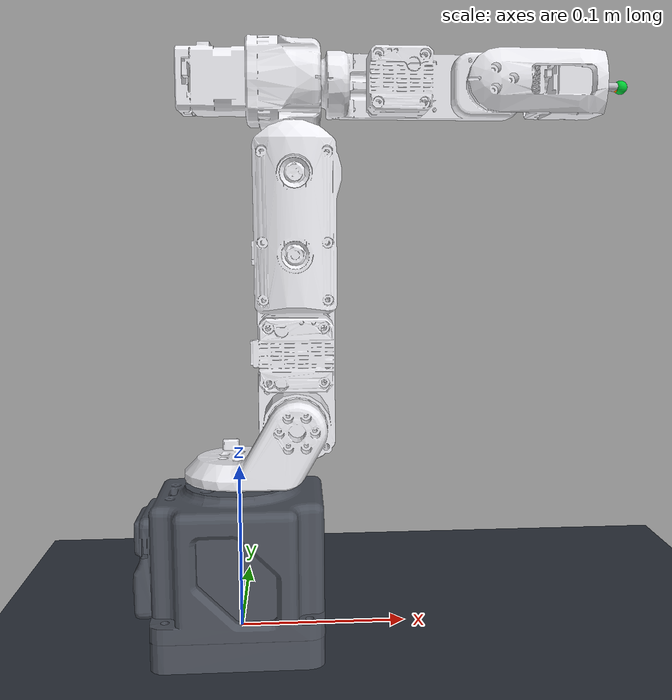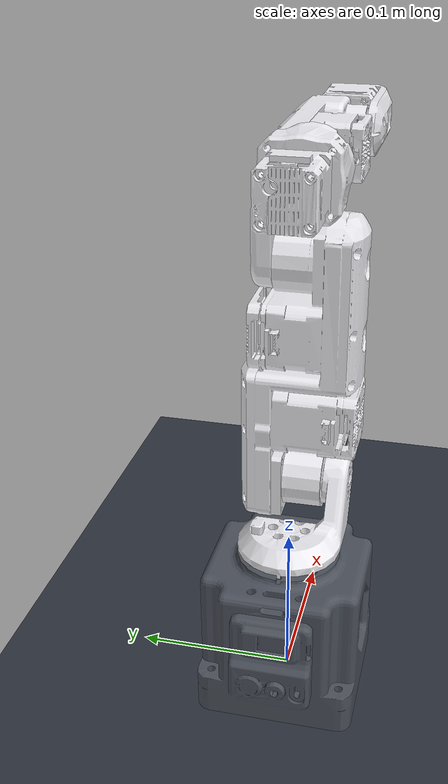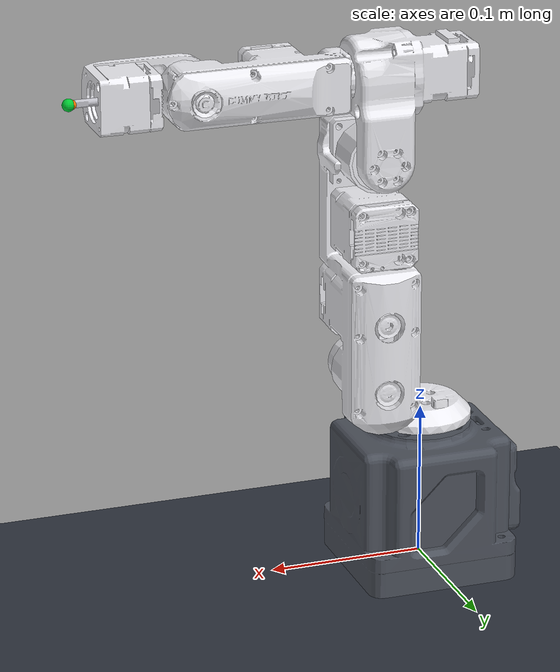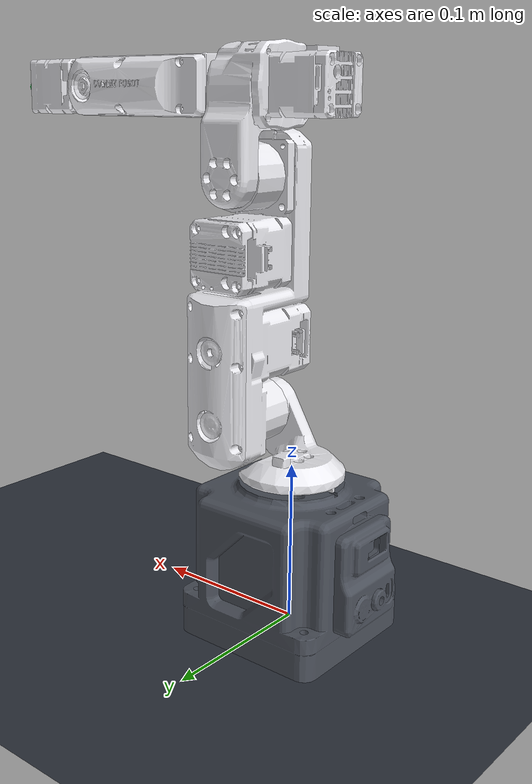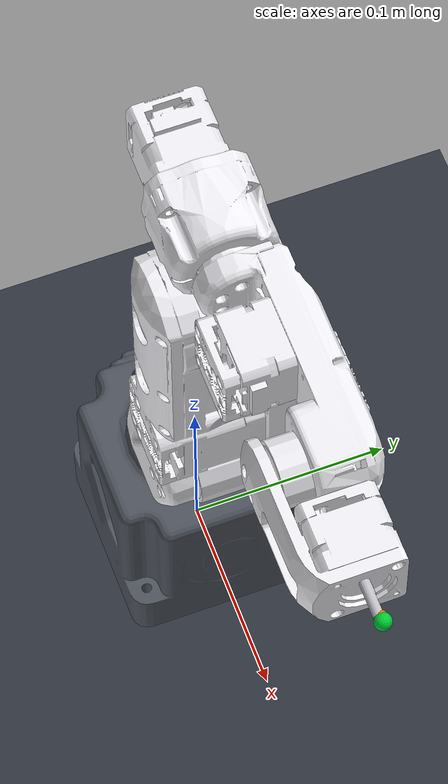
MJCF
<mujoco model="dummy_v2_FIRMWARE_DH_CAD_MASS_ESTIMATES">
  <!-- 由 tools/modeling/build_dummy_v2.py 生成，请勿手改。运动学 = V2 固件 DH；质量/惯量 = CAD 体积×估计密度 + 资料质量；执行器 = 资料额定值推算。均未经实机辨识。 -->
  <compiler angle="radian" meshdir="meshes_v2" autolimits="true" boundinertia="1e-7"/>
  <option timestep="0.002" integrator="implicitfast"/>
  <visual><global offwidth="960" offheight="720"/></visual>
  <default><geom contype="0" conaffinity="0"/></default>
  <asset>
    <mesh name="base_link" file="base_link.stl" scale="0.001 0.001 0.001" inertia="shell"/>
    <mesh name="link1" file="link1.stl" scale="0.001 0.001 0.001" inertia="shell"/>
    <mesh name="link2" file="link2.stl" scale="0.001 0.001 0.001" inertia="shell"/>
    <mesh name="link3" file="link3.stl" scale="0.001 0.001 0.001" inertia="shell"/>
    <mesh name="link4" file="link4.stl" scale="0.001 0.001 0.001" inertia="shell"/>
    <mesh name="link5" file="link5.stl" scale="0.001 0.001 0.001" inertia="shell"/>
    <mesh name="link6" file="link6.stl" scale="0.001 0.001 0.001" inertia="shell"/>
  </asset>
  <worldbody>
    <light pos="0.3 -0.6 1.2" dir="-0.2 0.5 -1" diffuse="0.8 0.8 0.8"/>
    <geom name="floor" type="plane" size="1 1 0.01" pos="0 0 -0.0075" rgba="0.18 0.20 0.24 1"/>
    <body name="base_link" gravcomp="1">
      <inertial pos="-0.000831234 0.000101811 0.0463087" mass="0.872292" fullinertia="0.000988263 0.00105749 0.000941302 6.51216e-06 -1.83224e-05 1.45738e-06"/>
      <geom name="base_link_visual" type="mesh" mesh="base_link" rgba="0.30 0.32 0.36 1" density="0" group="1"/>
      <body name="link1" pos="0 0 0" gravcomp="1">
        <joint name="Joint1" axis="0 0 1" range="-2.967060 2.967060" armature="0.0085" damping="0.3" actuatorfrcrange="-8.3 8.3"/>
        <inertial pos="0.0168766 -0.00579915 0.105385" mass="0.329271" fullinertia="0.000193963 0.000288371 0.000165512 3.1428e-05 -0.000116228 3.60092e-05"/>
        <geom name="link1_visual" type="mesh" mesh="link1" rgba="0.93 0.93 0.95 1" density="0" group="1"/>
        <body name="link2" pos="0.035 -7.74589e-18 0.1265" gravcomp="1">
          <joint name="Joint2" axis="0 1 0" range="-1.308997 1.570796" armature="0.0135" damping="0.3" actuatorfrcrange="-8.3 8.3"/>
          <inertial pos="-1.90944e-05 -0.000875645 0.0716854" mass="1.23235" fullinertia="0.00419905 0.00413882 0.000463347 3.09816e-07 -1.83325e-06 0.000357211"/>
          <geom name="link2_visual" type="mesh" mesh="link2" rgba="0.93 0.93 0.95 1" density="0" group="1"/>
          <body name="link3" pos="6.93889e-18 -8.93992e-18 0.146" gravcomp="1">
            <joint name="Joint3" axis="0 1 0" range="-1.570796 1.570796" armature="0.0085" damping="0.3" actuatorfrcrange="-8.3 8.3"/>
            <inertial pos="-0.0150739 0.00252776 0.038862" mass="0.625897" fullinertia="0.000486841 0.000592002 0.000283291 -2.89538e-05 0.00012542 7.24856e-05"/>
            <geom name="link3_visual" type="mesh" mesh="link3" rgba="0.93 0.93 0.95 1" density="0" group="1"/>
            <body name="link4" pos="0 -3.18408e-18 0.052" gravcomp="1">
              <joint name="Joint4" axis="1 0 0" range="-3.141593 3.141593" armature="0.00275" damping="0.3" actuatorfrcrange="-6 6"/>
              <inertial pos="0.0623124 0.000673193 0.000206517" mass="0.469893" fullinertia="9.04331e-05 0.00100944 0.00101398 -1.89841e-05 1.05834e-07 5.15426e-09"/>
              <geom name="link4_visual" type="mesh" mesh="link4" rgba="0.93 0.93 0.95 1" density="0" group="1"/>
              <body name="link5" pos="0.117 7.16418e-18 0" gravcomp="1">
                <joint name="Joint5" axis="0 1 0" range="-1.745329 2.094395" armature="0.0015" damping="0.3" actuatorfrcrange="-3.3 3.3"/>
                <inertial pos="0.0260004 -0.00643627 0.000227449" mass="0.197877" fullinertia="4.01456e-05 0.000124267 0.000132042 -2.58088e-05 4.20306e-08 -2.60225e-07"/>
                <geom name="link5_visual" type="mesh" mesh="link5" rgba="0.93 0.93 0.95 1" density="0" group="1"/>
                <body name="link6" pos="0 0 0" gravcomp="1">
                  <joint name="Joint6" axis="1 0 0" range="-12.566371 12.566371" armature="6e-07" damping="0.3" actuatorfrcrange="-0.07 0.07"/>
                  <inertial pos="0.0649063 0 0" mass="0.00262028" fullinertia="8.18839e-09 6.71994e-08 6.71994e-08 0 0 0"/>
                  <geom name="link6_visual" type="mesh" mesh="link6" rgba="0.75 0.75 0.78 1" density="0" group="1"/>
                  <!-- J6 裸轴：CAD 量得 Φ5.0 mm，轴端距腕心 73.4 mm（固件 L_WT = 75.5 mm） -->
                  <site name="shaft_tip" pos="0.07341 0 0" size="0.003" rgba="1 0.5 0 1"/>
                  <site name="fw_end" pos="0.0755 4.62304e-18 0" quat="0.707107 0 0.707107 4.32978e-17" size="0.004" rgba="0 0.8 0.2 1"/>
                </body>
              </body>
            </body>
          </body>
        </body>
      </body>
    </body>
  </worldbody>
  <actuator>
    <position name="servo1" joint="Joint1" kp="35" kv="4" ctrlrange="-2.967060 2.967060" forcerange="-8.3 8.3"/>
    <position name="servo2" joint="Joint2" kp="35" kv="4" ctrlrange="-1.308997 1.570796" forcerange="-8.3 8.3"/>
    <position name="servo3" joint="Joint3" kp="35" kv="4" ctrlrange="-1.570796 1.570796" forcerange="-8.3 8.3"/>
    <position name="servo4" joint="Joint4" kp="35" kv="4" ctrlrange="-3.141593 3.141593" forcerange="-6 6"/>
    <position name="servo5" joint="Joint5" kp="35" kv="4" ctrlrange="-1.745329 2.094395" forcerange="-3.3 3.3"/>
    <position name="servo6" joint="Joint6" kp="35" kv="4" ctrlrange="-12.566371 12.566371" forcerange="-0.07 0.07"/>
  </actuator>
</mujoco>
